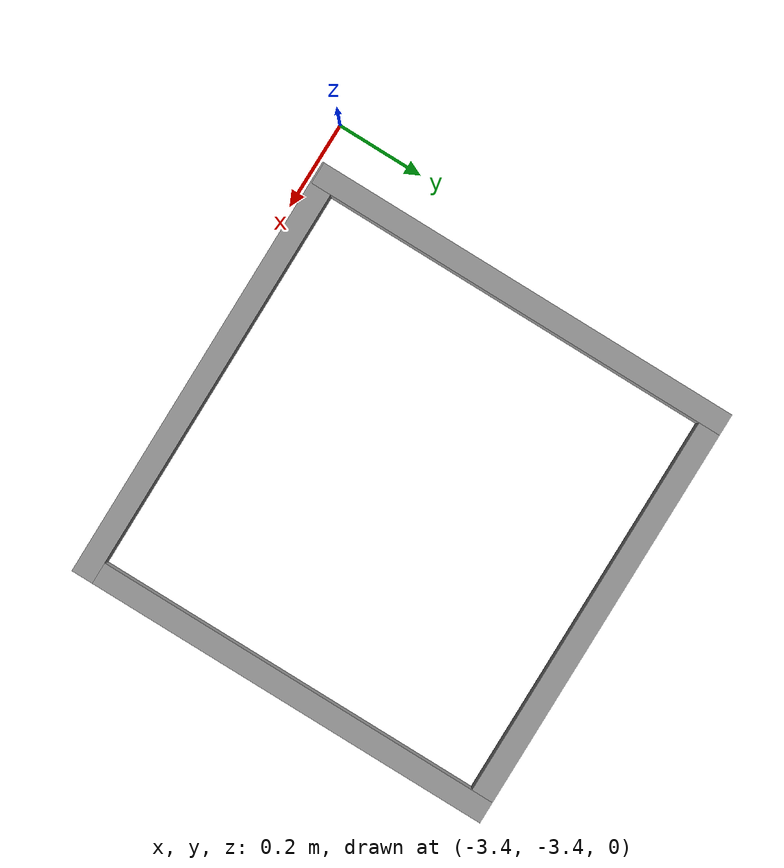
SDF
<?xml version='1.0'?>
<sdf version='1.7'>
  <model name='text'>
    <pose>-1.65523 -1.69254 0 0 -0 0</pose>
    <link name='Wall_0'>
      <collision name='Wall_0_Collision'>
        <geometry>
          <box>
            <size>1 0.05 0.05</size>
          </box>
        </geometry>
        <pose>0 0 0.025 0 -0 0</pose>
      </collision>
      <visual name='Wall_0_Visual'>
        <pose>0 0 0.025 0 -0 0</pose>
        <geometry>
          <box>
            <size>1 0.05 0.05</size>
          </box>
        </geometry>
        <material>
          <script>
            <uri>file://media/materials/scripts/gazebo.material</uri>
            <name>Gazebo/Grey</name>
          </script>
          <ambient>0 0 0 1</ambient>
        </material>
        <meta>
          <layer>0</layer>
        </meta>
      </visual>
      <pose>-1.63015 -1.18919 0 0 -0 -1.5708</pose>
    </link>
    <link name='Wall_1'>
      <collision name='Wall_1_Collision'>
        <geometry>
          <box>
            <size>1.00001 0.05 0.05</size>
          </box>
        </geometry>
        <pose>0 0 0.025 0 -0 0</pose>
      </collision>
      <visual name='Wall_1_Visual'>
        <pose>0 0 0.025 0 -0 0</pose>
        <geometry>
          <box>
            <size>1.00001 0.05 0.05</size>
          </box>
        </geometry>
        <material>
          <script>
            <uri>file://media/materials/scripts/gazebo.material</uri>
            <name>Gazebo/Grey</name>
          </script>
          <ambient>0 0 0 1</ambient>
        </material>
        <meta>
          <layer>0</layer>
        </meta>
      </visual>
      <pose>-1.15515 -1.66582 0 0 -0 0.003441</pose>
    </link>
    <link name='Wall_2'>
      <collision name='Wall_2_Collision'>
        <geometry>
          <box>
            <size>1 0.05 0.05</size>
          </box>
        </geometry>
        <pose>0 0 0.025 0 -0 0</pose>
      </collision>
      <visual name='Wall_2_Visual'>
        <pose>0 0 0.025 0 -0 0</pose>
        <geometry>
          <box>
            <size>1 0.05 0.05</size>
          </box>
        </geometry>
        <material>
          <script>
            <uri>file://media/materials/scripts/gazebo.material</uri>
            <name>Gazebo/Grey</name>
          </script>
          <ambient>0 0 0 1</ambient>
        </material>
        <meta>
          <layer>0</layer>
        </meta>
      </visual>
      <pose>-0.680147 -1.18919 0 0 -0 1.5708</pose>
    </link>
    <link name='Wall_3'>
      <collision name='Wall_3_Collision'>
        <geometry>
          <box>
            <size>1 0.05 0.05</size>
          </box>
        </geometry>
        <pose>0 0 0.025 0 -0 0</pose>
      </collision>
      <visual name='Wall_3_Visual'>
        <pose>0 0 0.025 0 -0 0</pose>
        <geometry>
          <box>
            <size>1 0.05 0.05</size>
          </box>
        </geometry>
        <material>
          <script>
            <uri>file://media/materials/scripts/gazebo.material</uri>
            <name>Gazebo/Grey</name>
          </script>
          <ambient>0 0 0 1</ambient>
        </material>
        <meta>
          <layer>0</layer>
        </meta>
      </visual>
      <pose>-1.15515 -0.714188 0 0 -0 3.14159</pose>
    </link>
    <static>1</static>
  </model>
</sdf>
